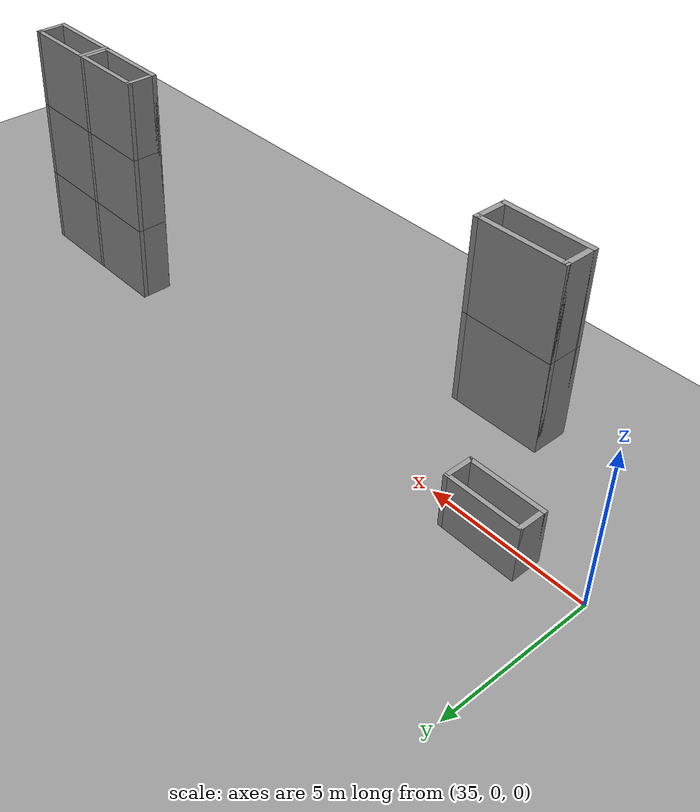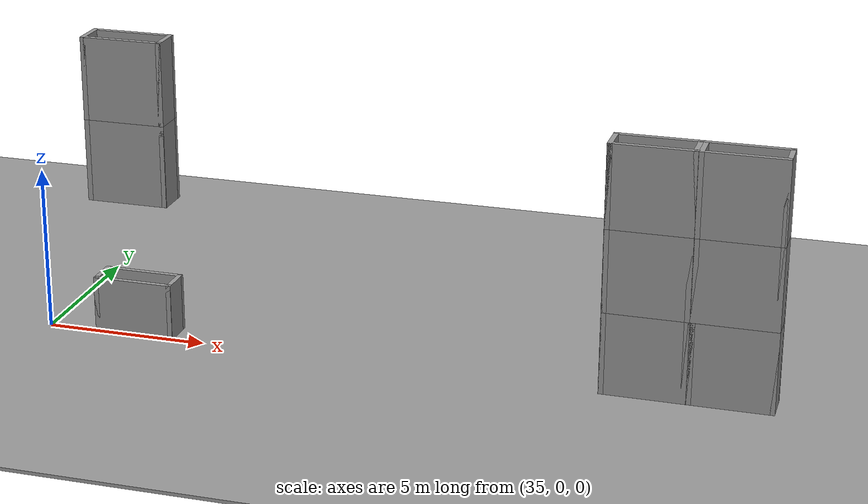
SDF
<sdf version="1.6">
 <world name="default">
  <model name="ground_plane">
   <static>1</static>
   <link name="link">
    <collision name="collision">
     <geometry><plane><normal>0 0 1</normal><size>100 100</size></plane></geometry>
     <surface><friction><ode><mu>100</mu><mu2>50</mu2></ode></friction></surface>
    </collision>
    <visual name="visual">
     <cast_shadows>0</cast_shadows>
     <geometry><plane><normal>0 0 1</normal><size>100 100</size></plane></geometry>
     <material>
      <script><uri>file://media/materials/scripts/gazebo.material</uri><name>Gazebo/Grey</name></script>
     </material>
    </visual>
   </link>
  </model>
  <model name="ground_plane_0">
   <static>1</static>
   <link name="link">
    <collision name="collision">
     <geometry><plane><normal>0 0 1</normal><size>100 100</size></plane></geometry>
     <surface>
      <contact><collide_bitmask>65535</collide_bitmask></contact>
      <friction><ode><mu>100</mu><mu2>50</mu2></ode></friction>
     </surface>
    </collision>
    <visual name="visual">
     <cast_shadows>0</cast_shadows>
     <geometry><plane><normal>0 0 1</normal><size>100 100</size></plane></geometry>
     <material>
      <script><uri>file://media/materials/scripts/gazebo.material</uri><name>Gazebo/Grey</name></script>
     </material>
    </visual>
   </link>
   <pose>61.8728 0.736212 0 0 -0 0</pose>
  </model>
  <model name="column25_clone_3_clone_0_clone_0">
   <pose>53.3565 0.297908 5.07328 0 -0 0</pose>
   <link name="Wall_0">
    <collision name="Wall_0_Collision">
     <geometry><box><size>2.5 0.15 2.5</size></box></geometry>
     <pose>0 0 1.25 0 -0 0</pose>
    </collision>
    <visual name="Wall_0_Visual">
     <pose>0 0 1.25 0 -0 0</pose>
     <geometry><box><size>2.5 0.15 2.5</size></box></geometry>
     <material>
      <script><uri>file://media/materials/scripts/gazebo.material</uri><name>Gazebo/Grey</name></script>
      <ambient>1 1 1 1</ambient>
     </material>
    </visual>
    <pose>0 -0.425 0 0 -0 0</pose>
   </link>
   <link name="Wall_1">
    <collision name="Wall_1_Collision">
     <geometry><box><size>1 0.15 2.5</size></box></geometry>
     <pose>0 0 1.25 0 -0 0</pose>
    </collision>
    <visual name="Wall_1_Visual">
     <pose>0 0 1.25 0 -0 0</pose>
     <geometry><box><size>1 0.15 2.5</size></box></geometry>
     <material>
      <script><uri>file://media/materials/scripts/gazebo.material</uri><name>Gazebo/Grey</name></script>
      <ambient>1 1 1 1</ambient>
     </material>
    </visual>
    <pose>1.175 0 0 0 -0 1.5708</pose>
   </link>
   <link name="Wall_2">
    <collision name="Wall_2_Collision">
     <geometry><box><size>2.5 0.15 2.5</size></box></geometry>
     <pose>0 0 1.25 0 -0 0</pose>
    </collision>
    <visual name="Wall_2_Visual">
     <pose>0 0 1.25 0 -0 0</pose>
     <geometry><box><size>2.5 0.15 2.5</size></box></geometry>
     <material>
      <script><uri>file://media/materials/scripts/gazebo.material</uri><name>Gazebo/Grey</name></script>
      <ambient>1 1 1 1</ambient>
     </material>
    </visual>
    <pose>0 0.425 0 0 -0 3.14159</pose>
   </link>
   <link name="Wall_3">
    <collision name="Wall_3_Collision">
     <geometry><box><size>1 0.15 2.5</size></box></geometry>
     <pose>0 0 1.25 0 -0 0</pose>
    </collision>
    <visual name="Wall_3_Visual">
     <pose>0 0 1.25 0 -0 0</pose>
     <geometry><box><size>1 0.15 2.5</size></box></geometry>
     <material>
      <script><uri>file://media/materials/scripts/gazebo.material</uri><name>Gazebo/Grey</name></script>
      <ambient>1 1 1 1</ambient>
     </material>
    </visual>
    <pose>-1.175 0 0 0 0 -1.5708</pose>
   </link>
   <static>1</static>
  </model>
  <model name="column25_clone_3_clone_0_clone_0_clone">
   <pose>53.3565 0.297908 2.57328 0 -0 0</pose>
   <link name="Wall_0">
    <collision name="Wall_0_Collision">
     <geometry><box><size>2.5 0.15 2.5</size></box></geometry>
     <pose>0 0 1.25 0 -0 0</pose>
    </collision>
    <visual name="Wall_0_Visual">
     <pose>0 0 1.25 0 -0 0</pose>
     <geometry><box><size>2.5 0.15 2.5</size></box></geometry>
     <material>
      <script><uri>file://media/materials/scripts/gazebo.material</uri><name>Gazebo/Grey</name></script>
      <ambient>1 1 1 1</ambient>
     </material>
    </visual>
    <pose>0 -0.425 0 0 -0 0</pose>
   </link>
   <link name="Wall_1">
    <collision name="Wall_1_Collision">
     <geometry><box><size>1 0.15 2.5</size></box></geometry>
     <pose>0 0 1.25 0 -0 0</pose>
    </collision>
    <visual name="Wall_1_Visual">
     <pose>0 0 1.25 0 -0 0</pose>
     <geometry><box><size>1 0.15 2.5</size></box></geometry>
     <material>
      <script><uri>file://media/materials/scripts/gazebo.material</uri><name>Gazebo/Grey</name></script>
      <ambient>1 1 1 1</ambient>
     </material>
    </visual>
    <pose>1.175 0 0 0 -0 1.5708</pose>
   </link>
   <link name="Wall_2">
    <collision name="Wall_2_Collision">
     <geometry><box><size>2.5 0.15 2.5</size></box></geometry>
     <pose>0 0 1.25 0 -0 0</pose>
    </collision>
    <visual name="Wall_2_Visual">
     <pose>0 0 1.25 0 -0 0</pose>
     <geometry><box><size>2.5 0.15 2.5</size></box></geometry>
     <material>
      <script><uri>file://media/materials/scripts/gazebo.material</uri><name>Gazebo/Grey</name></script>
      <ambient>1 1 1 1</ambient>
     </material>
    </visual>
    <pose>0 0.425 0 0 -0 3.14159</pose>
   </link>
   <link name="Wall_3">
    <collision name="Wall_3_Collision">
     <geometry><box><size>1 0.15 2.5</size></box></geometry>
     <pose>0 0 1.25 0 -0 0</pose>
    </collision>
    <visual name="Wall_3_Visual">
     <pose>0 0 1.25 0 -0 0</pose>
     <geometry><box><size>1 0.15 2.5</size></box></geometry>
     <material>
      <script><uri>file://media/materials/scripts/gazebo.material</uri><name>Gazebo/Grey</name></script>
      <ambient>1 1 1 1</ambient>
     </material>
    </visual>
    <pose>-1.175 0 0 0 0 -1.5708</pose>
   </link>
   <static>1</static>
  </model>
  <model name="column25_clone_3_clone_0_clone_0_clone_0">
   <pose>53.3565 0.297908 0.073277 0 -0 0</pose>
   <link name="Wall_0">
    <collision name="Wall_0_Collision">
     <geometry><box><size>2.5 0.15 2.5</size></box></geometry>
     <pose>0 0 1.25 0 -0 0</pose>
    </collision>
    <visual name="Wall_0_Visual">
     <pose>0 0 1.25 0 -0 0</pose>
     <geometry><box><size>2.5 0.15 2.5</size></box></geometry>
     <material>
      <script><uri>file://media/materials/scripts/gazebo.material</uri><name>Gazebo/Grey</name></script>
      <ambient>1 1 1 1</ambient>
     </material>
    </visual>
    <pose>0 -0.425 0 0 -0 0</pose>
   </link>
   <link name="Wall_1">
    <collision name="Wall_1_Collision">
     <geometry><box><size>1 0.15 2.5</size></box></geometry>
     <pose>0 0 1.25 0 -0 0</pose>
    </collision>
    <visual name="Wall_1_Visual">
     <pose>0 0 1.25 0 -0 0</pose>
     <geometry><box><size>1 0.15 2.5</size></box></geometry>
     <material>
      <script><uri>file://media/materials/scripts/gazebo.material</uri><name>Gazebo/Grey</name></script>
      <ambient>1 1 1 1</ambient>
     </material>
    </visual>
    <pose>1.175 0 0 0 -0 1.5708</pose>
   </link>
   <link name="Wall_2">
    <collision name="Wall_2_Collision">
     <geometry><box><size>2.5 0.15 2.5</size></box></geometry>
     <pose>0 0 1.25 0 -0 0</pose>
    </collision>
    <visual name="Wall_2_Visual">
     <pose>0 0 1.25 0 -0 0</pose>
     <geometry><box><size>2.5 0.15 2.5</size></box></geometry>
     <material>
      <script><uri>file://media/materials/scripts/gazebo.material</uri><name>Gazebo/Grey</name></script>
      <ambient>1 1 1 1</ambient>
     </material>
    </visual>
    <pose>0 0.425 0 0 -0 3.14159</pose>
   </link>
   <link name="Wall_3">
    <collision name="Wall_3_Collision">
     <geometry><box><size>1 0.15 2.5</size></box></geometry>
     <pose>0 0 1.25 0 -0 0</pose>
    </collision>
    <visual name="Wall_3_Visual">
     <pose>0 0 1.25 0 -0 0</pose>
     <geometry><box><size>1 0.15 2.5</size></box></geometry>
     <material>
      <script><uri>file://media/materials/scripts/gazebo.material</uri><name>Gazebo/Grey</name></script>
      <ambient>1 1 1 1</ambient>
     </material>
    </visual>
    <pose>-1.175 0 0 0 0 -1.5708</pose>
   </link>
   <static>1</static>
  </model>
  <model name="column25_clone_3_clone_0_clone_clone_clone_clone_clone">
   <pose>37.8237 0.315849 -0.68701 0 -0 4e-06</pose>
   <link name="Wall_0">
    <collision name="Wall_0_Collision">
     <geometry><box><size>2.5 0.15 2.5</size></box></geometry>
     <pose>0 0 1.25 0 -0 0</pose>
    </collision>
    <visual name="Wall_0_Visual">
     <pose>0 0 1.25 0 -0 0</pose>
     <geometry><box><size>2.5 0.15 2.5</size></box></geometry>
     <material>
      <script><uri>file://media/materials/scripts/gazebo.material</uri><name>Gazebo/Grey</name></script>
      <ambient>1 1 1 1</ambient>
     </material>
    </visual>
    <pose>0 -0.425 0 0 -0 0</pose>
   </link>
   <link name="Wall_1">
    <collision name="Wall_1_Collision">
     <geometry><box><size>1 0.15 2.5</size></box></geometry>
     <pose>0 0 1.25 0 -0 0</pose>
    </collision>
    <visual name="Wall_1_Visual">
     <pose>0 0 1.25 0 -0 0</pose>
     <geometry><box><size>1 0.15 2.5</size></box></geometry>
     <material>
      <script><uri>file://media/materials/scripts/gazebo.material</uri><name>Gazebo/Grey</name></script>
      <ambient>1 1 1 1</ambient>
     </material>
    </visual>
    <pose>1.175 0 0 0 -0 1.5708</pose>
   </link>
   <link name="Wall_2">
    <collision name="Wall_2_Collision">
     <geometry><box><size>2.5 0.15 2.5</size></box></geometry>
     <pose>0 0 1.25 0 -0 0</pose>
    </collision>
    <visual name="Wall_2_Visual">
     <pose>0 0 1.25 0 -0 0</pose>
     <geometry><box><size>2.5 0.15 2.5</size></box></geometry>
     <material>
      <script><uri>file://media/materials/scripts/gazebo.material</uri><name>Gazebo/Grey</name></script>
      <ambient>1 1 1 1</ambient>
     </material>
    </visual>
    <pose>0 0.425 0 0 -0 3.14159</pose>
   </link>
   <link name="Wall_3">
    <collision name="Wall_3_Collision">
     <geometry><box><size>1 0.15 2.5</size></box></geometry>
     <pose>0 0 1.25 0 -0 0</pose>
    </collision>
    <visual name="Wall_3_Visual">
     <pose>0 0 1.25 0 -0 0</pose>
     <geometry><box><size>1 0.15 2.5</size></box></geometry>
     <material>
      <script><uri>file://media/materials/scripts/gazebo.material</uri><name>Gazebo/Grey</name></script>
      <ambient>1 1 1 1</ambient>
     </material>
    </visual>
    <pose>-1.175 0 0 0 0 -1.5708</pose>
   </link>
   <static>1</static>
  </model>
  <model name="column25_clone_3_clone_0_clone_clone_clone_clone_clone_0">
   <pose>37.8237 0.315849 4.31299 0 -0 4e-06</pose>
   <link name="Wall_0">
    <collision name="Wall_0_Collision">
     <geometry><box><size>2.5 0.15 2.5</size></box></geometry>
     <pose>0 0 1.25 0 -0 0</pose>
    </collision>
    <visual name="Wall_0_Visual">
     <pose>0 0 1.25 0 -0 0</pose>
     <geometry><box><size>2.5 0.15 2.5</size></box></geometry>
     <material>
      <script><uri>file://media/materials/scripts/gazebo.material</uri><name>Gazebo/Grey</name></script>
      <ambient>1 1 1 1</ambient>
     </material>
    </visual>
    <pose>0 -0.425 0 0 -0 0</pose>
   </link>
   <link name="Wall_1">
    <collision name="Wall_1_Collision">
     <geometry><box><size>1 0.15 2.5</size></box></geometry>
     <pose>0 0 1.25 0 -0 0</pose>
    </collision>
    <visual name="Wall_1_Visual">
     <pose>0 0 1.25 0 -0 0</pose>
     <geometry><box><size>1 0.15 2.5</size></box></geometry>
     <material>
      <script><uri>file://media/materials/scripts/gazebo.material</uri><name>Gazebo/Grey</name></script>
      <ambient>1 1 1 1</ambient>
     </material>
    </visual>
    <pose>1.175 0 0 0 -0 1.5708</pose>
   </link>
   <link name="Wall_2">
    <collision name="Wall_2_Collision">
     <geometry><box><size>2.5 0.15 2.5</size></box></geometry>
     <pose>0 0 1.25 0 -0 0</pose>
    </collision>
    <visual name="Wall_2_Visual">
     <pose>0 0 1.25 0 -0 0</pose>
     <geometry><box><size>2.5 0.15 2.5</size></box></geometry>
     <material>
      <script><uri>file://media/materials/scripts/gazebo.material</uri><name>Gazebo/Grey</name></script>
      <ambient>1 1 1 1</ambient>
     </material>
    </visual>
    <pose>0 0.425 0 0 -0 3.14159</pose>
   </link>
   <link name="Wall_3">
    <collision name="Wall_3_Collision">
     <geometry><box><size>1 0.15 2.5</size></box></geometry>
     <pose>0 0 1.25 0 -0 0</pose>
    </collision>
    <visual name="Wall_3_Visual">
     <pose>0 0 1.25 0 -0 0</pose>
     <geometry><box><size>1 0.15 2.5</size></box></geometry>
     <material>
      <script><uri>file://media/materials/scripts/gazebo.material</uri><name>Gazebo/Grey</name></script>
      <ambient>1 1 1 1</ambient>
     </material>
    </visual>
    <pose>-1.175 0 0 0 0 -1.5708</pose>
   </link>
   <static>1</static>
  </model>
  <model name="column25_clone_3_clone_0_clone_clone_clone_clone_clone_0_clone">
   <pose>37.8237 0.315849 6.81299 0 -0 4e-06</pose>
   <link name="Wall_0">
    <collision name="Wall_0_Collision">
     <geometry><box><size>2.5 0.15 2.5</size></box></geometry>
     <pose>0 0 1.25 0 -0 0</pose>
    </collision>
    <visual name="Wall_0_Visual">
     <pose>0 0 1.25 0 -0 0</pose>
     <geometry><box><size>2.5 0.15 2.5</size></box></geometry>
     <material>
      <script><uri>file://media/materials/scripts/gazebo.material</uri><name>Gazebo/Grey</name></script>
      <ambient>1 1 1 1</ambient>
     </material>
    </visual>
    <pose>0 -0.425 0 0 -0 0</pose>
   </link>
   <link name="Wall_1">
    <collision name="Wall_1_Collision">
     <geometry><box><size>1 0.15 2.5</size></box></geometry>
     <pose>0 0 1.25 0 -0 0</pose>
    </collision>
    <visual name="Wall_1_Visual">
     <pose>0 0 1.25 0 -0 0</pose>
     <geometry><box><size>1 0.15 2.5</size></box></geometry>
     <material>
      <script><uri>file://media/materials/scripts/gazebo.material</uri><name>Gazebo/Grey</name></script>
      <ambient>1 1 1 1</ambient>
     </material>
    </visual>
    <pose>1.175 0 0 0 -0 1.5708</pose>
   </link>
   <link name="Wall_2">
    <collision name="Wall_2_Collision">
     <geometry><box><size>2.5 0.15 2.5</size></box></geometry>
     <pose>0 0 1.25 0 -0 0</pose>
    </collision>
    <visual name="Wall_2_Visual">
     <pose>0 0 1.25 0 -0 0</pose>
     <geometry><box><size>2.5 0.15 2.5</size></box></geometry>
     <material>
      <script><uri>file://media/materials/scripts/gazebo.material</uri><name>Gazebo/Grey</name></script>
      <ambient>1 1 1 1</ambient>
     </material>
    </visual>
    <pose>0 0.425 0 0 -0 3.14159</pose>
   </link>
   <link name="Wall_3">
    <collision name="Wall_3_Collision">
     <geometry><box><size>1 0.15 2.5</size></box></geometry>
     <pose>0 0 1.25 0 -0 0</pose>
    </collision>
    <visual name="Wall_3_Visual">
     <pose>0 0 1.25 0 -0 0</pose>
     <geometry><box><size>1 0.15 2.5</size></box></geometry>
     <material>
      <script><uri>file://media/materials/scripts/gazebo.material</uri><name>Gazebo/Grey</name></script>
      <ambient>1 1 1 1</ambient>
     </material>
    </visual>
    <pose>-1.175 0 0 0 0 -1.5708</pose>
   </link>
   <static>1</static>
  </model>
  <model name="column25_clone_3_clone_0_clone_0_clone_0_clone">
   <pose>55.8565 0.298331 0.073277 0 -0 8e-06</pose>
   <link name="Wall_0">
    <collision name="Wall_0_Collision">
     <geometry><box><size>2.5 0.15 2.5</size></box></geometry>
     <pose>0 0 1.25 0 -0 0</pose>
    </collision>
    <visual name="Wall_0_Visual">
     <pose>0 0 1.25 0 -0 0</pose>
     <geometry><box><size>2.5 0.15 2.5</size></box></geometry>
     <material>
      <script><uri>file://media/materials/scripts/gazebo.material</uri><name>Gazebo/Grey</name></script>
      <ambient>1 1 1 1</ambient>
     </material>
    </visual>
    <pose>0 -0.425 0 0 -0 0</pose>
   </link>
   <link name="Wall_1">
    <collision name="Wall_1_Collision">
     <geometry><box><size>1 0.15 2.5</size></box></geometry>
     <pose>0 0 1.25 0 -0 0</pose>
    </collision>
    <visual name="Wall_1_Visual">
     <pose>0 0 1.25 0 -0 0</pose>
     <geometry><box><size>1 0.15 2.5</size></box></geometry>
     <material>
      <script><uri>file://media/materials/scripts/gazebo.material</uri><name>Gazebo/Grey</name></script>
      <ambient>1 1 1 1</ambient>
     </material>
    </visual>
    <pose>1.175 0 0 0 -0 1.5708</pose>
   </link>
   <link name="Wall_2">
    <collision name="Wall_2_Collision">
     <geometry><box><size>2.5 0.15 2.5</size></box></geometry>
     <pose>0 0 1.25 0 -0 0</pose>
    </collision>
    <visual name="Wall_2_Visual">
     <pose>0 0 1.25 0 -0 0</pose>
     <geometry><box><size>2.5 0.15 2.5</size></box></geometry>
     <material>
      <script><uri>file://media/materials/scripts/gazebo.material</uri><name>Gazebo/Grey</name></script>
      <ambient>1 1 1 1</ambient>
     </material>
    </visual>
    <pose>0 0.425 0 0 -0 3.14159</pose>
   </link>
   <link name="Wall_3">
    <collision name="Wall_3_Collision">
     <geometry><box><size>1 0.15 2.5</size></box></geometry>
     <pose>0 0 1.25 0 -0 0</pose>
    </collision>
    <visual name="Wall_3_Visual">
     <pose>0 0 1.25 0 -0 0</pose>
     <geometry><box><size>1 0.15 2.5</size></box></geometry>
     <material>
      <script><uri>file://media/materials/scripts/gazebo.material</uri><name>Gazebo/Grey</name></script>
      <ambient>1 1 1 1</ambient>
     </material>
    </visual>
    <pose>-1.175 0 0 0 0 -1.5708</pose>
   </link>
   <static>1</static>
  </model>
  <model name="column25_clone_3_clone_0_clone_0_clone_0_clone_clone">
   <pose>55.8565 0.29833 2.57328 0 -0 8e-06</pose>
   <link name="Wall_0">
    <collision name="Wall_0_Collision">
     <geometry><box><size>2.5 0.15 2.5</size></box></geometry>
     <pose>0 0 1.25 0 -0 0</pose>
    </collision>
    <visual name="Wall_0_Visual">
     <pose>0 0 1.25 0 -0 0</pose>
     <geometry><box><size>2.5 0.15 2.5</size></box></geometry>
     <material>
      <script><uri>file://media/materials/scripts/gazebo.material</uri><name>Gazebo/Grey</name></script>
      <ambient>1 1 1 1</ambient>
     </material>
    </visual>
    <pose>0 -0.425 0 0 -0 0</pose>
   </link>
   <link name="Wall_1">
    <collision name="Wall_1_Collision">
     <geometry><box><size>1 0.15 2.5</size></box></geometry>
     <pose>0 0 1.25 0 -0 0</pose>
    </collision>
    <visual name="Wall_1_Visual">
     <pose>0 0 1.25 0 -0 0</pose>
     <geometry><box><size>1 0.15 2.5</size></box></geometry>
     <material>
      <script><uri>file://media/materials/scripts/gazebo.material</uri><name>Gazebo/Grey</name></script>
      <ambient>1 1 1 1</ambient>
     </material>
    </visual>
    <pose>1.175 0 0 0 -0 1.5708</pose>
   </link>
   <link name="Wall_2">
    <collision name="Wall_2_Collision">
     <geometry><box><size>2.5 0.15 2.5</size></box></geometry>
     <pose>0 0 1.25 0 -0 0</pose>
    </collision>
    <visual name="Wall_2_Visual">
     <pose>0 0 1.25 0 -0 0</pose>
     <geometry><box><size>2.5 0.15 2.5</size></box></geometry>
     <material>
      <script><uri>file://media/materials/scripts/gazebo.material</uri><name>Gazebo/Grey</name></script>
      <ambient>1 1 1 1</ambient>
     </material>
    </visual>
    <pose>0 0.425 0 0 -0 3.14159</pose>
   </link>
   <link name="Wall_3">
    <collision name="Wall_3_Collision">
     <geometry><box><size>1 0.15 2.5</size></box></geometry>
     <pose>0 0 1.25 0 -0 0</pose>
    </collision>
    <visual name="Wall_3_Visual">
     <pose>0 0 1.25 0 -0 0</pose>
     <geometry><box><size>1 0.15 2.5</size></box></geometry>
     <material>
      <script><uri>file://media/materials/scripts/gazebo.material</uri><name>Gazebo/Grey</name></script>
      <ambient>1 1 1 1</ambient>
     </material>
    </visual>
    <pose>-1.175 0 0 0 0 -1.5708</pose>
   </link>
   <static>1</static>
  </model>
  <model name="column25_clone_3_clone_0_clone_0_clone_0_clone_clone_clone">
   <pose>55.8565 0.29833 5.07328 0 -0 8e-06</pose>
   <link name="Wall_0">
    <collision name="Wall_0_Collision">
     <geometry><box><size>2.5 0.15 2.5</size></box></geometry>
     <pose>0 0 1.25 0 -0 0</pose>
    </collision>
    <visual name="Wall_0_Visual">
     <pose>0 0 1.25 0 -0 0</pose>
     <geometry><box><size>2.5 0.15 2.5</size></box></geometry>
     <material>
      <script><uri>file://media/materials/scripts/gazebo.material</uri><name>Gazebo/Grey</name></script>
      <ambient>1 1 1 1</ambient>
     </material>
    </visual>
    <pose>0 -0.425 0 0 -0 0</pose>
   </link>
   <link name="Wall_1">
    <collision name="Wall_1_Collision">
     <geometry><box><size>1 0.15 2.5</size></box></geometry>
     <pose>0 0 1.25 0 -0 0</pose>
    </collision>
    <visual name="Wall_1_Visual">
     <pose>0 0 1.25 0 -0 0</pose>
     <geometry><box><size>1 0.15 2.5</size></box></geometry>
     <material>
      <script><uri>file://media/materials/scripts/gazebo.material</uri><name>Gazebo/Grey</name></script>
      <ambient>1 1 1 1</ambient>
     </material>
    </visual>
    <pose>1.175 0 0 0 -0 1.5708</pose>
   </link>
   <link name="Wall_2">
    <collision name="Wall_2_Collision">
     <geometry><box><size>2.5 0.15 2.5</size></box></geometry>
     <pose>0 0 1.25 0 -0 0</pose>
    </collision>
    <visual name="Wall_2_Visual">
     <pose>0 0 1.25 0 -0 0</pose>
     <geometry><box><size>2.5 0.15 2.5</size></box></geometry>
     <material>
      <script><uri>file://media/materials/scripts/gazebo.material</uri><name>Gazebo/Grey</name></script>
      <ambient>1 1 1 1</ambient>
     </material>
    </visual>
    <pose>0 0.425 0 0 -0 3.14159</pose>
   </link>
   <link name="Wall_3">
    <collision name="Wall_3_Collision">
     <geometry><box><size>1 0.15 2.5</size></box></geometry>
     <pose>0 0 1.25 0 -0 0</pose>
    </collision>
    <visual name="Wall_3_Visual">
     <pose>0 0 1.25 0 -0 0</pose>
     <geometry><box><size>1 0.15 2.5</size></box></geometry>
     <material>
      <script><uri>file://media/materials/scripts/gazebo.material</uri><name>Gazebo/Grey</name></script>
      <ambient>1 1 1 1</ambient>
     </material>
    </visual>
    <pose>-1.175 0 0 0 0 -1.5708</pose>
   </link>
   <static>1</static>
  </model>
 </world>
</sdf>
